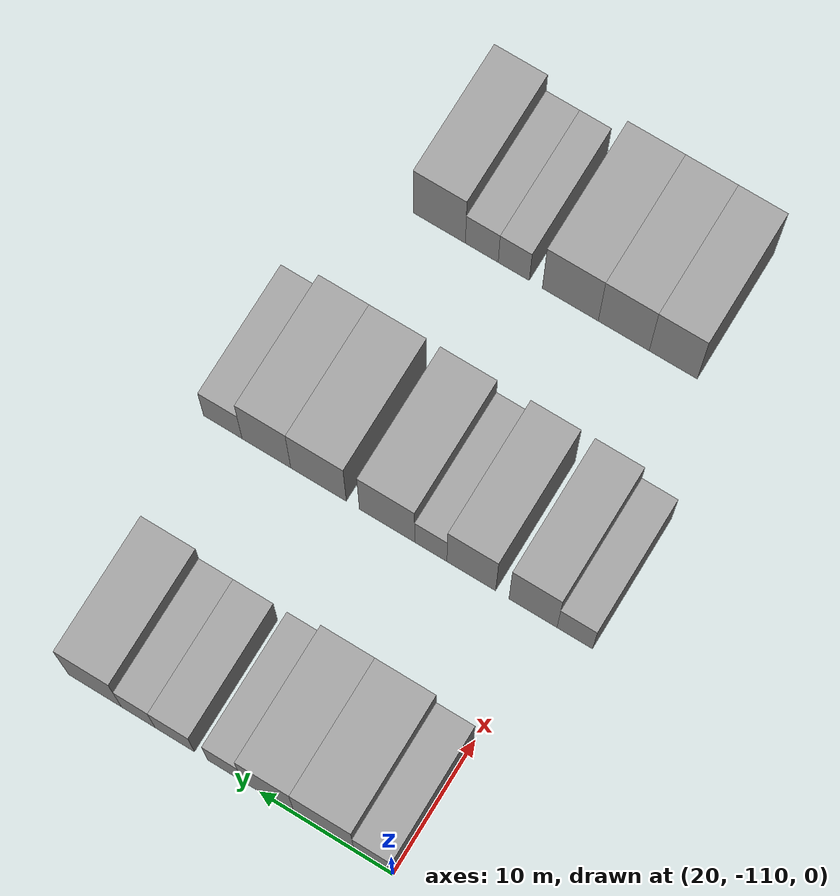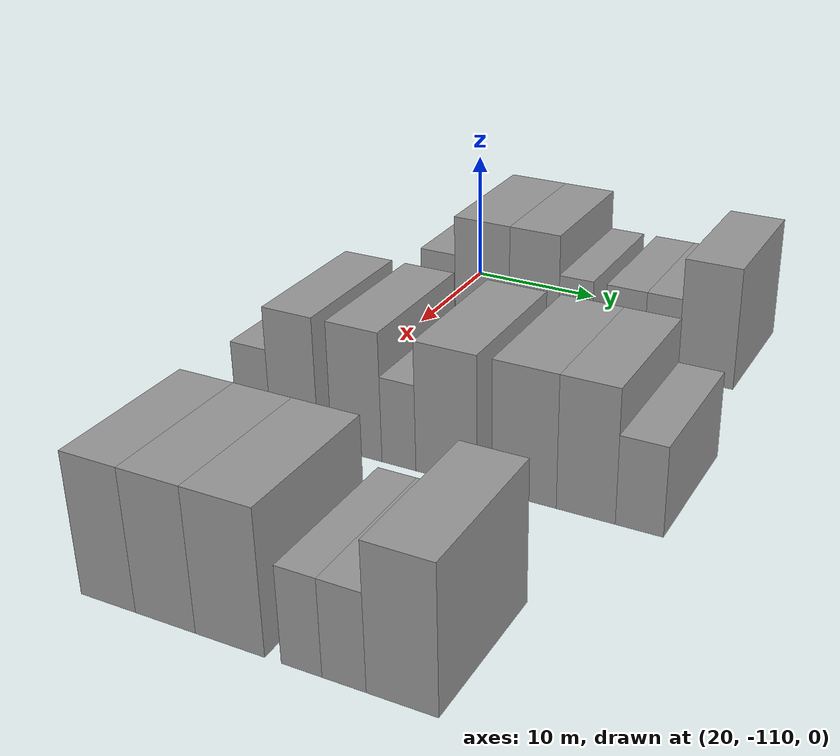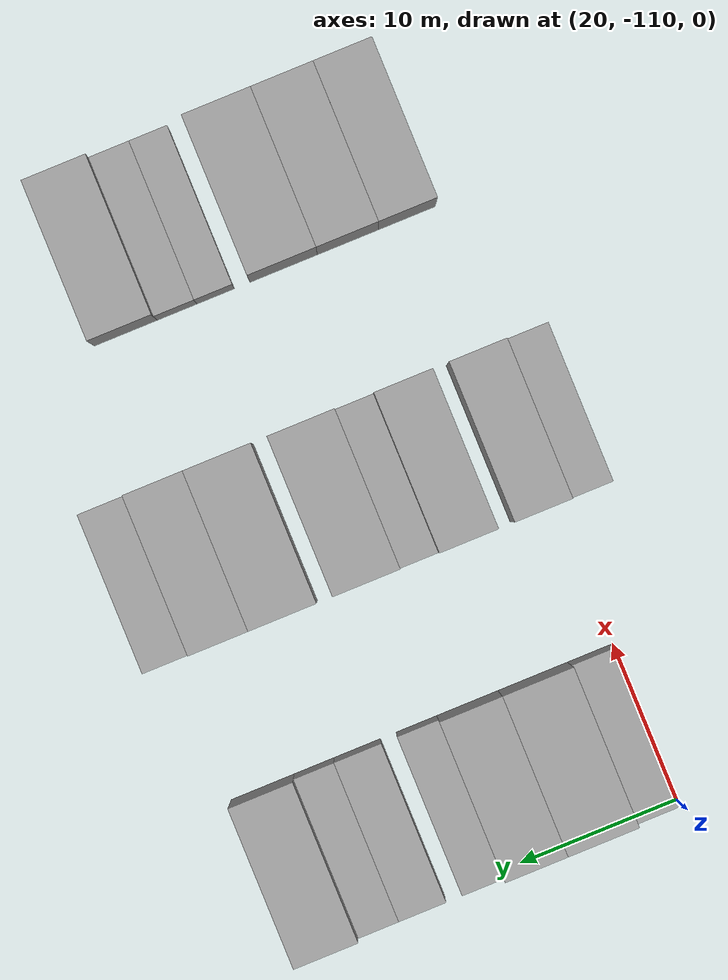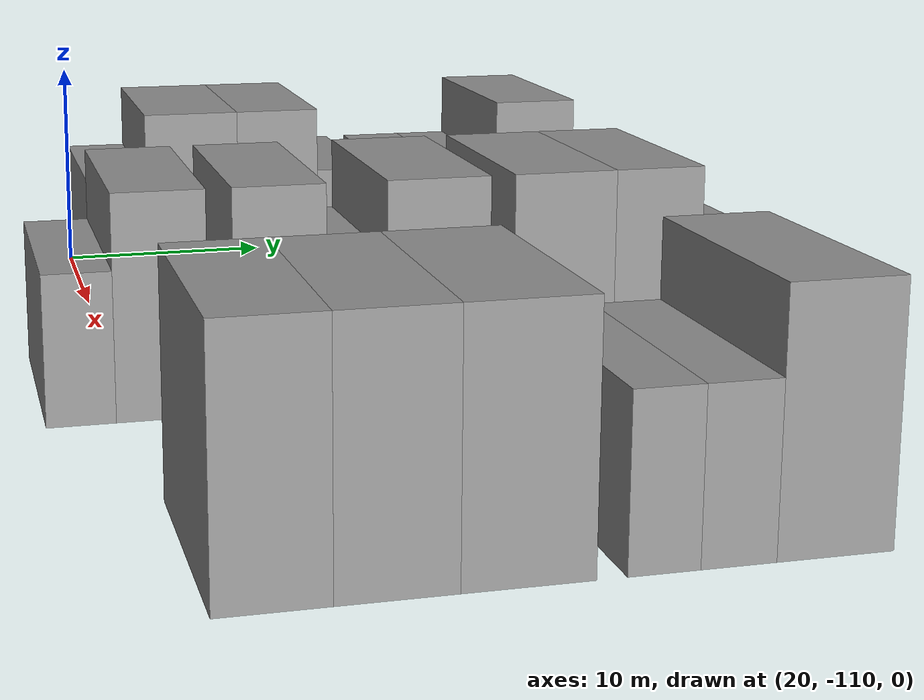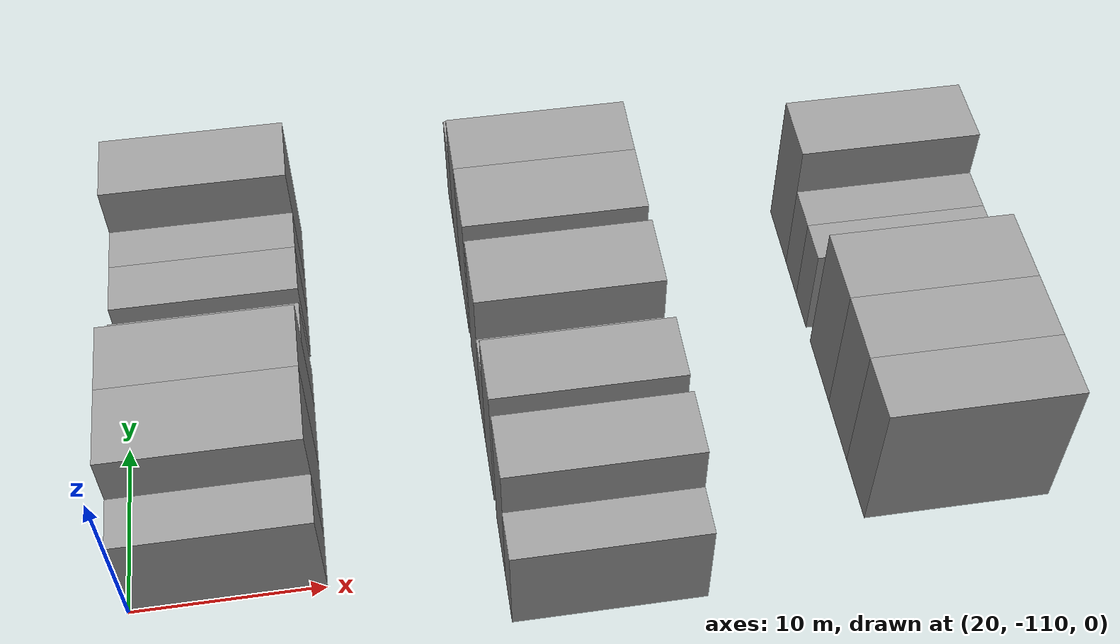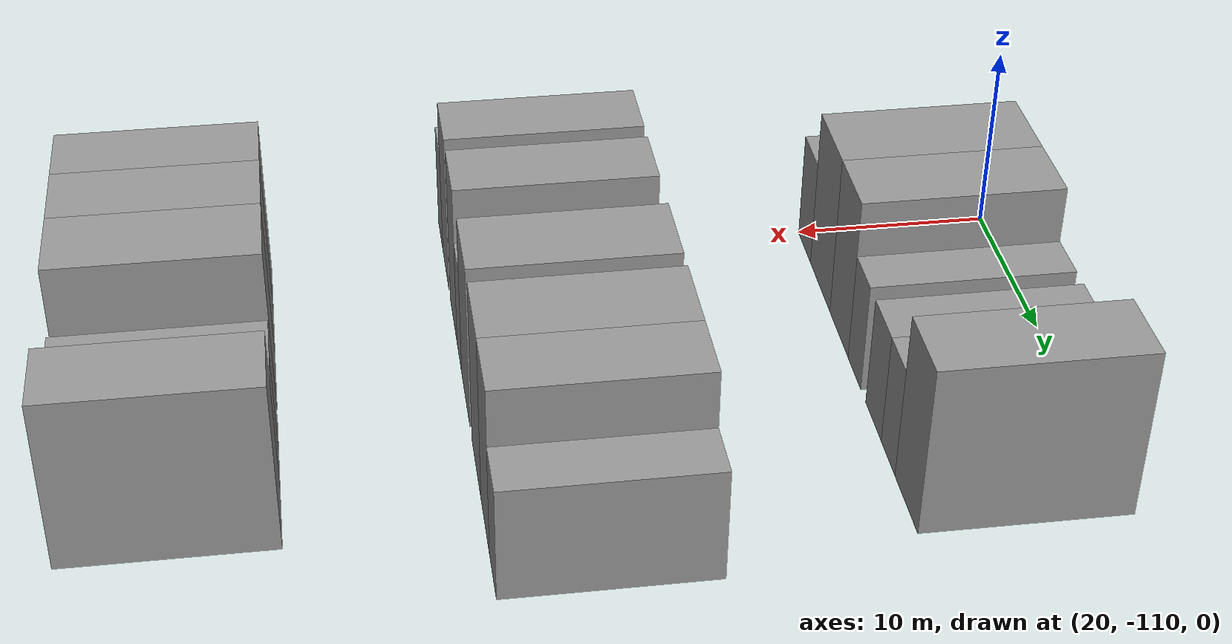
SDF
<sdf version="1.6">
 <world name="default">
  <model name="building_29">
   <static>1</static>
   <pose>25.0000 -108.5100 0 0.000000 0.000000 0.000000</pose>
   <link name="link">
    <pose>0 0 3.00 0 0 0</pose>
    <collision name="collision"><geometry><box><size>10.0000 2.8418 6.0000</size></box></geometry></collision>
    <visual name="visual">
     <cast_shadows>0</cast_shadows>
     <geometry><box><size>10.0000 2.8418 6.0000</size></box></geometry>
     <material>
      <script>
       <uri>model://grey_wall/materials/scripts</uri>
       <uri>model://grey_wall/materials/textures</uri>
       <name>vrc/grey_wall</name>
      </script>
     </material>
    </visual>
   </link>
  </model>
  <model name="building_30">
   <static>1</static>
   <pose>25.0000 -104.8680 0 0.000000 0.000000 0.000000</pose>
   <link name="link">
    <pose>0 0 4.50 0 0 0</pose>
    <collision name="collision"><geometry><box><size>10.0000 4.4422 9.0000</size></box></geometry></collision>
    <visual name="visual">
     <cast_shadows>0</cast_shadows>
     <geometry><box><size>10.0000 4.4422 9.0000</size></box></geometry>
     <material>
      <script>
       <uri>model://grey_wall/materials/scripts</uri>
       <uri>model://grey_wall/materials/textures</uri>
       <name>vrc/grey_wall</name>
      </script>
     </material>
    </visual>
   </link>
  </model>
  <model name="building_31">
   <static>1</static>
   <pose>25.0000 -100.6837 0 0.000000 0.000000 0.000000</pose>
   <link name="link">
    <pose>0 0 4.50 0 0 0</pose>
    <collision name="collision"><geometry><box><size>10.0000 3.9265 9.0000</size></box></geometry></collision>
    <visual name="visual">
     <cast_shadows>0</cast_shadows>
     <geometry><box><size>10.0000 3.9265 9.0000</size></box></geometry>
     <material>
      <script>
       <uri>model://grey_wall/materials/scripts</uri>
       <uri>model://grey_wall/materials/textures</uri>
       <name>vrc/grey_wall</name>
      </script>
     </material>
    </visual>
   </link>
  </model>
  <model name="building_32">
   <static>1</static>
   <pose>25.0000 -97.4180 0 0.000000 0.000000 0.000000</pose>
   <link name="link">
    <pose>0 0 3.00 0 0 0</pose>
    <collision name="collision"><geometry><box><size>10.0000 2.6049 6.0000</size></box></geometry></collision>
    <visual name="visual">
     <cast_shadows>0</cast_shadows>
     <geometry><box><size>10.0000 2.6049 6.0000</size></box></geometry>
     <material>
      <script>
       <uri>model://grey_wall/materials/scripts</uri>
       <uri>model://grey_wall/materials/textures</uri>
       <name>vrc/grey_wall</name>
      </script>
     </material>
    </visual>
   </link>
  </model>
  <model name="building_33">
   <static>1</static>
   <pose>25.0000 -93.6222 0 0.000000 0.000000 0.000000</pose>
   <link name="link">
    <pose>0 0 3.00 0 0 0</pose>
    <collision name="collision"><geometry><box><size>10.0000 2.9867 6.0000</size></box></geometry></collision>
    <visual name="visual">
     <cast_shadows>0</cast_shadows>
     <geometry><box><size>10.0000 2.9867 6.0000</size></box></geometry>
     <material>
      <script>
       <uri>model://grey_wall/materials/scripts</uri>
       <uri>model://grey_wall/materials/textures</uri>
       <name>vrc/grey_wall</name>
      </script>
     </material>
    </visual>
   </link>
  </model>
  <model name="building_34">
   <static>1</static>
   <pose>25.0000 -90.8556 0 0.000000 0.000000 0.000000</pose>
   <link name="link">
    <pose>0 0 3.00 0 0 0</pose>
    <collision name="collision"><geometry><box><size>10.0000 2.5463 6.0000</size></box></geometry></collision>
    <visual name="visual">
     <cast_shadows>0</cast_shadows>
     <geometry><box><size>10.0000 2.5463 6.0000</size></box></geometry>
     <material>
      <script>
       <uri>model://grey_wall/materials/scripts</uri>
       <uri>model://grey_wall/materials/textures</uri>
       <name>vrc/grey_wall</name>
      </script>
     </material>
    </visual>
   </link>
  </model>
  <model name="building_35">
   <static>1</static>
   <pose>25.0000 -87.5665 0 0.000000 0.000000 0.000000</pose>
   <link name="link">
    <pose>0 0 4.50 0 0 0</pose>
    <collision name="collision"><geometry><box><size>10.0000 4.0319 9.0000</size></box></geometry></collision>
    <visual name="visual">
     <cast_shadows>0</cast_shadows>
     <geometry><box><size>10.0000 4.0319 9.0000</size></box></geometry>
     <material>
      <script>
       <uri>model://grey_wall/materials/scripts</uri>
       <uri>model://grey_wall/materials/textures</uri>
       <name>vrc/grey_wall</name>
      </script>
     </material>
    </visual>
   </link>
  </model>
  <model name="building_145">
   <static>1</static>
   <pose>44.0000 -112.0608 0 0.000000 0.000000 0.000000</pose>
   <link name="link">
    <pose>0 0 3.00 0 0 0</pose>
    <collision name="collision"><geometry><box><size>10.0000 2.6738 6.0000</size></box></geometry></collision>
    <visual name="visual">
     <cast_shadows>0</cast_shadows>
     <geometry><box><size>10.0000 2.6738 6.0000</size></box></geometry>
     <material>
      <script>
       <uri>model://grey_wall/materials/scripts</uri>
       <uri>model://grey_wall/materials/textures</uri>
       <name>vrc/grey_wall</name>
      </script>
     </material>
    </visual>
   </link>
  </model>
  <model name="building_146">
   <static>1</static>
   <pose>44.0000 -108.9138 0 0.000000 0.000000 0.000000</pose>
   <link name="link">
    <pose>0 0 4.50 0 0 0</pose>
    <collision name="collision"><geometry><box><size>10.0000 3.6202 9.0000</size></box></geometry></collision>
    <visual name="visual">
     <cast_shadows>0</cast_shadows>
     <geometry><box><size>10.0000 3.6202 9.0000</size></box></geometry>
     <material>
      <script>
       <uri>model://grey_wall/materials/scripts</uri>
       <uri>model://grey_wall/materials/textures</uri>
       <name>vrc/grey_wall</name>
      </script>
     </material>
    </visual>
   </link>
  </model>
  <model name="building_147">
   <static>1</static>
   <pose>44.0000 -104.2568 0 0.000000 0.000000 0.000000</pose>
   <link name="link">
    <pose>0 0 4.50 0 0 0</pose>
    <collision name="collision"><geometry><box><size>10.0000 3.6939 9.0000</size></box></geometry></collision>
    <visual name="visual">
     <cast_shadows>0</cast_shadows>
     <geometry><box><size>10.0000 3.6939 9.0000</size></box></geometry>
     <material>
      <script>
       <uri>model://grey_wall/materials/scripts</uri>
       <uri>model://grey_wall/materials/textures</uri>
       <name>vrc/grey_wall</name>
      </script>
     </material>
    </visual>
   </link>
  </model>
  <model name="building_148">
   <static>1</static>
   <pose>44.0000 -101.1942 0 0.000000 0.000000 0.000000</pose>
   <link name="link">
    <pose>0 0 3.00 0 0 0</pose>
    <collision name="collision"><geometry><box><size>10.0000 2.4314 6.0000</size></box></geometry></collision>
    <visual name="visual">
     <cast_shadows>0</cast_shadows>
     <geometry><box><size>10.0000 2.4314 6.0000</size></box></geometry>
     <material>
      <script>
       <uri>model://grey_wall/materials/scripts</uri>
       <uri>model://grey_wall/materials/textures</uri>
       <name>vrc/grey_wall</name>
      </script>
     </material>
    </visual>
   </link>
  </model>
  <model name="building_149">
   <static>1</static>
   <pose>44.0000 -97.8675 0 0.000000 0.000000 0.000000</pose>
   <link name="link">
    <pose>0 0 4.50 0 0 0</pose>
    <collision name="collision"><geometry><box><size>10.0000 4.2219 9.0000</size></box></geometry></collision>
    <visual name="visual">
     <cast_shadows>0</cast_shadows>
     <geometry><box><size>10.0000 4.2219 9.0000</size></box></geometry>
     <material>
      <script>
       <uri>model://grey_wall/materials/scripts</uri>
       <uri>model://grey_wall/materials/textures</uri>
       <name>vrc/grey_wall</name>
      </script>
     </material>
    </visual>
   </link>
  </model>
  <model name="building_150">
   <static>1</static>
   <pose>44.0000 -92.6258 0 0.000000 0.000000 0.000000</pose>
   <link name="link">
    <pose>0 0 4.50 0 0 0</pose>
    <collision name="collision"><geometry><box><size>10.0000 4.2616 9.0000</size></box></geometry></collision>
    <visual name="visual">
     <cast_shadows>0</cast_shadows>
     <geometry><box><size>10.0000 4.2616 9.0000</size></box></geometry>
     <material>
      <script>
       <uri>model://grey_wall/materials/scripts</uri>
       <uri>model://grey_wall/materials/textures</uri>
       <name>vrc/grey_wall</name>
      </script>
     </material>
    </visual>
   </link>
  </model>
  <model name="building_151">
   <static>1</static>
   <pose>44.0000 -88.6178 0 0.000000 0.000000 0.000000</pose>
   <link name="link">
    <pose>0 0 4.50 0 0 0</pose>
    <collision name="collision"><geometry><box><size>10.0000 3.7545 9.0000</size></box></geometry></collision>
    <visual name="visual">
     <cast_shadows>0</cast_shadows>
     <geometry><box><size>10.0000 3.7545 9.0000</size></box></geometry>
     <material>
      <script>
       <uri>model://grey_wall/materials/scripts</uri>
       <uri>model://grey_wall/materials/textures</uri>
       <name>vrc/grey_wall</name>
      </script>
     </material>
    </visual>
   </link>
  </model>
  <model name="building_152">
   <static>1</static>
   <pose>44.0000 -85.2584 0 0.000000 0.000000 0.000000</pose>
   <link name="link">
    <pose>0 0 3.00 0 0 0</pose>
    <collision name="collision"><geometry><box><size>10.0000 2.9643 6.0000</size></box></geometry></collision>
    <visual name="visual">
     <cast_shadows>0</cast_shadows>
     <geometry><box><size>10.0000 2.9643 6.0000</size></box></geometry>
     <material>
      <script>
       <uri>model://grey_wall/materials/scripts</uri>
       <uri>model://grey_wall/materials/textures</uri>
       <name>vrc/grey_wall</name>
      </script>
     </material>
    </visual>
   </link>
  </model>
  <model name="building_258">
   <static>1</static>
   <pose>63.0000 -108.2444 0 0.000000 0.000000 0.000000</pose>
   <link name="link">
    <pose>0 0 4.50 0 0 0</pose>
    <collision name="collision"><geometry><box><size>10.0000 3.6691 9.0000</size></box></geometry></collision>
    <visual name="visual">
     <cast_shadows>0</cast_shadows>
     <geometry><box><size>10.0000 3.6691 9.0000</size></box></geometry>
     <material>
      <script>
       <uri>model://grey_wall/materials/scripts</uri>
       <uri>model://grey_wall/materials/textures</uri>
       <name>vrc/grey_wall</name>
      </script>
     </material>
    </visual>
   </link>
  </model>
  <model name="building_259">
   <static>1</static>
   <pose>63.0000 -104.4614 0 0.000000 0.000000 0.000000</pose>
   <link name="link">
    <pose>0 0 4.50 0 0 0</pose>
    <collision name="collision"><geometry><box><size>10.0000 3.8968 9.0000</size></box></geometry></collision>
    <visual name="visual">
     <cast_shadows>0</cast_shadows>
     <geometry><box><size>10.0000 3.8968 9.0000</size></box></geometry>
     <material>
      <script>
       <uri>model://grey_wall/materials/scripts</uri>
       <uri>model://grey_wall/materials/textures</uri>
       <name>vrc/grey_wall</name>
      </script>
     </material>
    </visual>
   </link>
  </model>
  <model name="building_260">
   <static>1</static>
   <pose>63.0000 -100.3607 0 0.000000 0.000000 0.000000</pose>
   <link name="link">
    <pose>0 0 4.50 0 0 0</pose>
    <collision name="collision"><geometry><box><size>10.0000 4.3047 9.0000</size></box></geometry></collision>
    <visual name="visual">
     <cast_shadows>0</cast_shadows>
     <geometry><box><size>10.0000 4.3047 9.0000</size></box></geometry>
     <material>
      <script>
       <uri>model://grey_wall/materials/scripts</uri>
       <uri>model://grey_wall/materials/textures</uri>
       <name>vrc/grey_wall</name>
      </script>
     </material>
    </visual>
   </link>
  </model>
  <model name="building_261">
   <static>1</static>
   <pose>63.0000 -96.0054 0 0.000000 0.000000 0.000000</pose>
   <link name="link">
    <pose>0 0 3.00 0 0 0</pose>
    <collision name="collision"><geometry><box><size>10.0000 2.4059 6.0000</size></box></geometry></collision>
    <visual name="visual">
     <cast_shadows>0</cast_shadows>
     <geometry><box><size>10.0000 2.4059 6.0000</size></box></geometry>
     <material>
      <script>
       <uri>model://grey_wall/materials/scripts</uri>
       <uri>model://grey_wall/materials/textures</uri>
       <name>vrc/grey_wall</name>
      </script>
     </material>
    </visual>
   </link>
  </model>
  <model name="building_262">
   <static>1</static>
   <pose>63.0000 -93.5291 0 0.000000 0.000000 0.000000</pose>
   <link name="link">
    <pose>0 0 3.00 0 0 0</pose>
    <collision name="collision"><geometry><box><size>10.0000 2.5468 6.0000</size></box></geometry></collision>
    <visual name="visual">
     <cast_shadows>0</cast_shadows>
     <geometry><box><size>10.0000 2.5468 6.0000</size></box></geometry>
     <material>
      <script>
       <uri>model://grey_wall/materials/scripts</uri>
       <uri>model://grey_wall/materials/textures</uri>
       <name>vrc/grey_wall</name>
      </script>
     </material>
    </visual>
   </link>
  </model>
  <model name="building_263">
   <static>1</static>
   <pose>63.0000 -90.2463 0 0.000000 0.000000 0.000000</pose>
   <link name="link">
    <pose>0 0 4.50 0 0 0</pose>
    <collision name="collision"><geometry><box><size>10.0000 4.0188 9.0000</size></box></geometry></collision>
    <visual name="visual">
     <cast_shadows>0</cast_shadows>
     <geometry><box><size>10.0000 4.0188 9.0000</size></box></geometry>
     <material>
      <script>
       <uri>model://grey_wall/materials/scripts</uri>
       <uri>model://grey_wall/materials/textures</uri>
       <name>vrc/grey_wall</name>
      </script>
     </material>
    </visual>
   </link>
  </model>
 </world>
</sdf>
